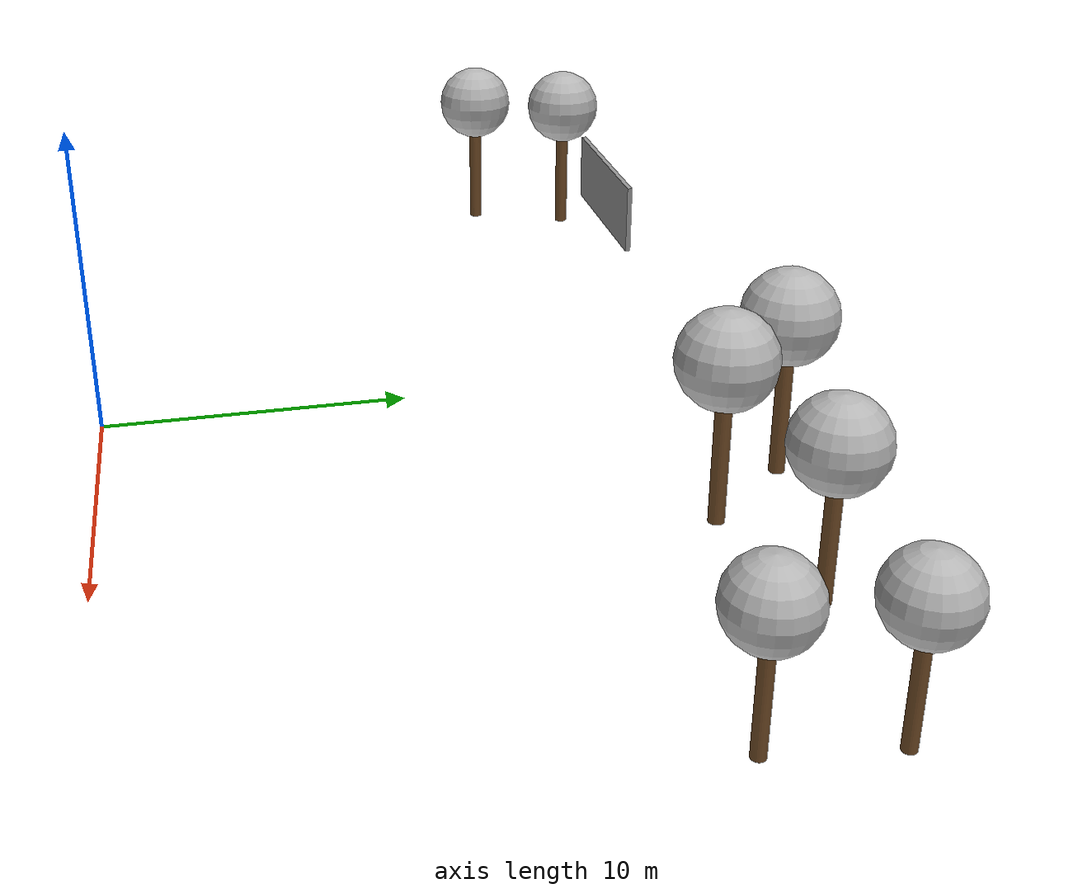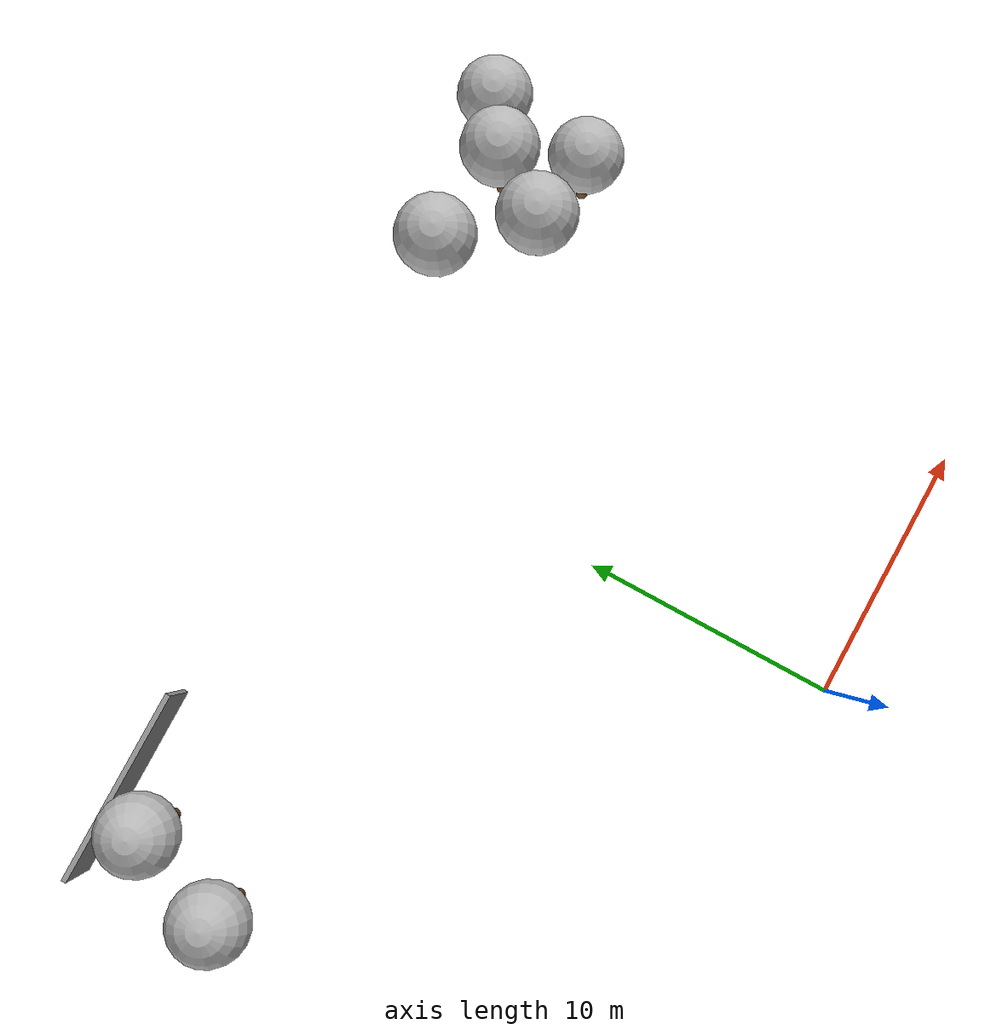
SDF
<sdf version="1.7">
 <world name="default">
  <model name="tree_simple_0_clone_0_clone_clone_1_clone_clone_1">
   <static>1</static>
   <link name="link">
    <pose>0 0 0.1 0 -0 0</pose>
    <inertial>
     <mass>666</mass>
     <inertia>
      <ixx>0.0861167</ixx>
      <ixy>0</ixy>
      <ixz>0</ixz>
      <iyy>0.0861167</iyy>
      <iyz>0</iyz>
      <izz>0.0861167</izz>
     </inertia>
    </inertial>
    <collision name="collision_trunk">
     <pose>0 0 2 0 -0 0</pose>
     <geometry><cylinder><radius>0.25</radius><length>4</length></cylinder></geometry>
     <surface>
      <contact>
       <poissons_ratio>0.347</poissons_ratio>
       <elastic_modulus>8.8e+09</elastic_modulus>
       <ode><kp>100000</kp><kd>100</kd><max_vel>100</max_vel><min_depth>0.001</min_depth></ode>
      </contact>
      <friction>
       <torsional>
        <coefficient>1</coefficient>
        <use_patch_radius>0</use_patch_radius>
        <surface_radius>0.01</surface_radius>
       </torsional>
      </friction>
     </surface>
    </collision>
    <collision name="collision_treetop">
     <pose>0 0 5.2 0 -0 0</pose>
     <geometry><sphere><radius>1.5</radius></sphere></geometry>
     <surface>
      <contact>
       <poissons_ratio>0.347</poissons_ratio>
       <elastic_modulus>8.8e+09</elastic_modulus>
       <ode><kp>100000</kp><kd>100</kd><max_vel>100</max_vel><min_depth>0.001</min_depth></ode>
      </contact>
      <friction>
       <torsional>
        <coefficient>1</coefficient>
        <use_patch_radius>0</use_patch_radius>
        <surface_radius>0.01</surface_radius>
       </torsional>
      </friction>
     </surface>
    </collision>
    <visual name="trunk">
     <pose>0 0 2 0 -0 0</pose>
     <geometry><cylinder><radius>0.25</radius><length>4</length></cylinder></geometry>
     <material>
      <script>
       <uri>model://tree_simple/scripts</uri>
       <uri>model://tree_simple/materials/textures</uri>
       <name>TreeSimple/Trunk</name>
      </script>
     </material>
    </visual>
    <visual name="treetop">
     <pose>0 0 5.2 0 -0 0</pose>
     <geometry><sphere><radius>1.5</radius></sphere></geometry>
     <material>
      <script>
       <uri>model://tree_simple/scripts</uri>
       <uri>model://tree_simple/materials/textures</uri>
       <name>TreeSimple/Treetop</name>
      </script>
     </material>
    </visual>
   </link>
   <pose>14.4798 22.0908 -5.25636 0 -0 0</pose>
  </model>
  <model name="tree_simple_0_clone_0_clone_clone_1_clone_clone_2">
   <static>1</static>
   <link name="link">
    <pose>0 0 0.1 0 -0 0</pose>
    <inertial>
     <mass>666</mass>
     <inertia>
      <ixx>0.0861167</ixx>
      <ixy>0</ixy>
      <ixz>0</ixz>
      <iyy>0.0861167</iyy>
      <iyz>0</iyz>
      <izz>0.0861167</izz>
     </inertia>
    </inertial>
    <collision name="collision_trunk">
     <pose>0 0 2 0 -0 0</pose>
     <geometry><cylinder><radius>0.25</radius><length>4</length></cylinder></geometry>
     <surface>
      <contact>
       <poissons_ratio>0.347</poissons_ratio>
       <elastic_modulus>8.8e+09</elastic_modulus>
       <ode><kp>100000</kp><kd>100</kd><max_vel>100</max_vel><min_depth>0.001</min_depth></ode>
      </contact>
      <friction>
       <torsional>
        <coefficient>1</coefficient>
        <use_patch_radius>0</use_patch_radius>
        <surface_radius>0.01</surface_radius>
       </torsional>
      </friction>
     </surface>
    </collision>
    <collision name="collision_treetop">
     <pose>0 0 5.2 0 -0 0</pose>
     <geometry><sphere><radius>1.5</radius></sphere></geometry>
     <surface>
      <contact>
       <poissons_ratio>0.347</poissons_ratio>
       <elastic_modulus>8.8e+09</elastic_modulus>
       <ode><kp>100000</kp><kd>100</kd><max_vel>100</max_vel><min_depth>0.001</min_depth></ode>
      </contact>
      <friction>
       <torsional>
        <coefficient>1</coefficient>
        <use_patch_radius>0</use_patch_radius>
        <surface_radius>0.01</surface_radius>
       </torsional>
      </friction>
     </surface>
    </collision>
    <visual name="trunk">
     <pose>0 0 2 0 -0 0</pose>
     <geometry><cylinder><radius>0.25</radius><length>4</length></cylinder></geometry>
     <material>
      <script>
       <uri>model://tree_simple/scripts</uri>
       <uri>model://tree_simple/materials/textures</uri>
       <name>TreeSimple/Trunk</name>
      </script>
     </material>
    </visual>
    <visual name="treetop">
     <pose>0 0 5.2 0 -0 0</pose>
     <geometry><sphere><radius>1.5</radius></sphere></geometry>
     <material>
      <script>
       <uri>model://tree_simple/scripts</uri>
       <uri>model://tree_simple/materials/textures</uri>
       <name>TreeSimple/Treetop</name>
      </script>
     </material>
    </visual>
   </link>
   <pose>13.9771 17.7579 -5.17122 0 -0 0</pose>
  </model>
  <model name="grey_wall_0">
   <static>1</static>
   <link name="link">
    <pose>0 0 1.4 0 -0 0</pose>
    <collision name="collision"><geometry><box><size>7.5 0.2 2.8</size></box></geometry></collision>
    <visual name="visual">
     <cast_shadows>0</cast_shadows>
     <geometry><box><size>7.5 0.2 2.8</size></box></geometry>
     <material>
      <script>
       <uri>model://grey_wall/materials/scripts</uri>
       <uri>model://grey_wall/materials/textures</uri>
       <name>vrc/grey_wall</name>
      </script>
     </material>
    </visual>
   </link>
   <pose>-15.2381 21.2721 0.02316 0 -0 0</pose>
  </model>
  <model name="tree_simple_0_clone_0_clone_clone_5_clone">
   <static>1</static>
   <link name="link">
    <pose>0 0 0.1 0 -0 0</pose>
    <inertial>
     <mass>666</mass>
     <inertia>
      <ixx>0.0861167</ixx>
      <ixy>0</ixy>
      <ixz>0</ixz>
      <iyy>0.0861167</iyy>
      <iyz>0</iyz>
      <izz>0.0861167</izz>
     </inertia>
    </inertial>
    <collision name="collision_trunk">
     <pose>0 0 2 0 -0 0</pose>
     <geometry><cylinder><radius>0.25</radius><length>4</length></cylinder></geometry>
     <surface>
      <contact>
       <poissons_ratio>0.347</poissons_ratio>
       <elastic_modulus>8.8e+09</elastic_modulus>
       <ode><kp>100000</kp><kd>100</kd><max_vel>100</max_vel><min_depth>0.001</min_depth></ode>
      </contact>
      <friction>
       <torsional>
        <coefficient>1</coefficient>
        <use_patch_radius>0</use_patch_radius>
        <surface_radius>0.01</surface_radius>
       </torsional>
      </friction>
     </surface>
    </collision>
    <collision name="collision_treetop">
     <pose>0 0 5.2 0 -0 0</pose>
     <geometry><sphere><radius>1.5</radius></sphere></geometry>
     <surface>
      <contact>
       <poissons_ratio>0.347</poissons_ratio>
       <elastic_modulus>8.8e+09</elastic_modulus>
       <ode><kp>100000</kp><kd>100</kd><max_vel>100</max_vel><min_depth>0.001</min_depth></ode>
      </contact>
      <friction>
       <torsional>
        <coefficient>1</coefficient>
        <use_patch_radius>0</use_patch_radius>
        <surface_radius>0.01</surface_radius>
       </torsional>
      </friction>
     </surface>
    </collision>
    <visual name="trunk">
     <pose>0 0 2 0 -0 0</pose>
     <geometry><cylinder><radius>0.25</radius><length>4</length></cylinder></geometry>
     <material>
      <script>
       <uri>model://tree_simple/scripts</uri>
       <uri>model://tree_simple/materials/textures</uri>
       <name>TreeSimple/Trunk</name>
      </script>
     </material>
    </visual>
    <visual name="treetop">
     <pose>0 0 5.2 0 -0 0</pose>
     <geometry><sphere><radius>1.5</radius></sphere></geometry>
     <material>
      <script>
       <uri>model://tree_simple/scripts</uri>
       <uri>model://tree_simple/materials/textures</uri>
       <name>TreeSimple/Treetop</name>
      </script>
     </material>
    </visual>
   </link>
   <pose>7.38896 20.4847 0 0 -0 0</pose>
  </model>
  <model name="tree_simple_0_clone_0_clone_clone_5_clone_0">
   <static>1</static>
   <link name="link">
    <pose>0 0 0.1 0 -0 0</pose>
    <inertial>
     <mass>666</mass>
     <inertia>
      <ixx>0.0861167</ixx>
      <ixy>0</ixy>
      <ixz>0</ixz>
      <iyy>0.0861167</iyy>
      <iyz>0</iyz>
      <izz>0.0861167</izz>
     </inertia>
    </inertial>
    <collision name="collision_trunk">
     <pose>0 0 2 0 -0 0</pose>
     <geometry><cylinder><radius>0.25</radius><length>4</length></cylinder></geometry>
     <surface>
      <contact>
       <poissons_ratio>0.347</poissons_ratio>
       <elastic_modulus>8.8e+09</elastic_modulus>
       <ode><kp>100000</kp><kd>100</kd><max_vel>100</max_vel><min_depth>0.001</min_depth></ode>
      </contact>
      <friction>
       <torsional>
        <coefficient>1</coefficient>
        <use_patch_radius>0</use_patch_radius>
        <surface_radius>0.01</surface_radius>
       </torsional>
      </friction>
     </surface>
    </collision>
    <collision name="collision_treetop">
     <pose>0 0 5.2 0 -0 0</pose>
     <geometry><sphere><radius>1.5</radius></sphere></geometry>
     <surface>
      <contact>
       <poissons_ratio>0.347</poissons_ratio>
       <elastic_modulus>8.8e+09</elastic_modulus>
       <ode><kp>100000</kp><kd>100</kd><max_vel>100</max_vel><min_depth>0.001</min_depth></ode>
      </contact>
      <friction>
       <torsional>
        <coefficient>1</coefficient>
        <use_patch_radius>0</use_patch_radius>
        <surface_radius>0.01</surface_radius>
       </torsional>
      </friction>
     </surface>
    </collision>
    <visual name="trunk">
     <pose>0 0 2 0 -0 0</pose>
     <geometry><cylinder><radius>0.25</radius><length>4</length></cylinder></geometry>
     <material>
      <script>
       <uri>model://tree_simple/scripts</uri>
       <uri>model://tree_simple/materials/textures</uri>
       <name>TreeSimple/Trunk</name>
      </script>
     </material>
    </visual>
    <visual name="treetop">
     <pose>0 0 5.2 0 -0 0</pose>
     <geometry><sphere><radius>1.5</radius></sphere></geometry>
     <material>
      <script>
       <uri>model://tree_simple/scripts</uri>
       <uri>model://tree_simple/materials/textures</uri>
       <name>TreeSimple/Treetop</name>
      </script>
     </material>
    </visual>
   </link>
   <pose>9.77795 17.6794 0 0 -0 0</pose>
  </model>
  <model name="tree_simple_0_clone_0_clone_clone_5_clone_1">
   <static>1</static>
   <link name="link">
    <pose>0 0 0.1 0 -0 0</pose>
    <inertial>
     <mass>666</mass>
     <inertia>
      <ixx>0.0861167</ixx>
      <ixy>0</ixy>
      <ixz>0</ixz>
      <iyy>0.0861167</iyy>
      <iyz>0</iyz>
      <izz>0.0861167</izz>
     </inertia>
    </inertial>
    <collision name="collision_trunk">
     <pose>0 0 2 0 -0 0</pose>
     <geometry><cylinder><radius>0.25</radius><length>4</length></cylinder></geometry>
     <surface>
      <contact>
       <poissons_ratio>0.347</poissons_ratio>
       <elastic_modulus>8.8e+09</elastic_modulus>
       <ode><kp>100000</kp><kd>100</kd><max_vel>100</max_vel><min_depth>0.001</min_depth></ode>
      </contact>
      <friction>
       <torsional>
        <coefficient>1</coefficient>
        <use_patch_radius>0</use_patch_radius>
        <surface_radius>0.01</surface_radius>
       </torsional>
      </friction>
     </surface>
    </collision>
    <collision name="collision_treetop">
     <pose>0 0 5.2 0 -0 0</pose>
     <geometry><sphere><radius>1.5</radius></sphere></geometry>
     <surface>
      <contact>
       <poissons_ratio>0.347</poissons_ratio>
       <elastic_modulus>8.8e+09</elastic_modulus>
       <ode><kp>100000</kp><kd>100</kd><max_vel>100</max_vel><min_depth>0.001</min_depth></ode>
      </contact>
      <friction>
       <torsional>
        <coefficient>1</coefficient>
        <use_patch_radius>0</use_patch_radius>
        <surface_radius>0.01</surface_radius>
       </torsional>
      </friction>
     </surface>
    </collision>
    <visual name="trunk">
     <pose>0 0 2 0 -0 0</pose>
     <geometry><cylinder><radius>0.25</radius><length>4</length></cylinder></geometry>
     <material>
      <script>
       <uri>model://tree_simple/scripts</uri>
       <uri>model://tree_simple/materials/textures</uri>
       <name>TreeSimple/Trunk</name>
      </script>
     </material>
    </visual>
    <visual name="treetop">
     <pose>0 0 5.2 0 -0 0</pose>
     <geometry><sphere><radius>1.5</radius></sphere></geometry>
     <material>
      <script>
       <uri>model://tree_simple/scripts</uri>
       <uri>model://tree_simple/materials/textures</uri>
       <name>TreeSimple/Treetop</name>
      </script>
     </material>
    </visual>
   </link>
   <pose>11.7759 20.3219 -1.86721 0 -0 0</pose>
  </model>
  <model name="tree_simple_0_clone_0_clone_clone_clone_0_clone_2_clone_0_clone_0">
   <static>1</static>
   <link name="link">
    <pose>0 0 0.1 0 -0 0</pose>
    <inertial>
     <mass>666</mass>
     <inertia>
      <ixx>0.0861167</ixx>
      <ixy>0</ixy>
      <ixz>0</ixz>
      <iyy>0.0861167</iyy>
      <iyz>0</iyz>
      <izz>0.0861167</izz>
     </inertia>
    </inertial>
    <collision name="collision_trunk">
     <pose>0 0 2 0 -0 0</pose>
     <geometry><cylinder><radius>0.25</radius><length>4</length></cylinder></geometry>
     <surface>
      <contact>
       <poissons_ratio>0.347</poissons_ratio>
       <elastic_modulus>8.8e+09</elastic_modulus>
       <ode><kp>100000</kp><kd>100</kd><max_vel>100</max_vel><min_depth>0.001</min_depth></ode>
      </contact>
      <friction>
       <torsional>
        <coefficient>1</coefficient>
        <use_patch_radius>0</use_patch_radius>
        <surface_radius>0.01</surface_radius>
       </torsional>
      </friction>
     </surface>
    </collision>
    <collision name="collision_treetop">
     <pose>0 0 5.2 0 -0 0</pose>
     <geometry><sphere><radius>1.5</radius></sphere></geometry>
     <surface>
      <contact>
       <poissons_ratio>0.347</poissons_ratio>
       <elastic_modulus>8.8e+09</elastic_modulus>
       <ode><kp>100000</kp><kd>100</kd><max_vel>100</max_vel><min_depth>0.001</min_depth></ode>
      </contact>
      <friction>
       <torsional>
        <coefficient>1</coefficient>
        <use_patch_radius>0</use_patch_radius>
        <surface_radius>0.01</surface_radius>
       </torsional>
      </friction>
     </surface>
    </collision>
    <visual name="trunk">
     <pose>0 0 2 0 -0 0</pose>
     <geometry><cylinder><radius>0.25</radius><length>4</length></cylinder></geometry>
     <material>
      <script>
       <uri>model://tree_simple/scripts</uri>
       <uri>model://tree_simple/materials/textures</uri>
       <name>TreeSimple/Trunk</name>
      </script>
     </material>
    </visual>
    <visual name="treetop">
     <pose>0 0 5.2 0 -0 0</pose>
     <geometry><sphere><radius>1.5</radius></sphere></geometry>
     <material>
      <script>
       <uri>model://tree_simple/scripts</uri>
       <uri>model://tree_simple/materials/textures</uri>
       <name>TreeSimple/Treetop</name>
      </script>
     </material>
    </visual>
   </link>
   <pose>-15.6847 19.3765 0 0 -0 0</pose>
  </model>
  <model name="tree_simple_0_clone_0_clone_clone_clone_0_clone_2_clone_0_clone_1">
   <static>1</static>
   <link name="link">
    <pose>0 0 0.1 0 -0 0</pose>
    <inertial>
     <mass>666</mass>
     <inertia>
      <ixx>0.0861167</ixx>
      <ixy>0</ixy>
      <ixz>0</ixz>
      <iyy>0.0861167</iyy>
      <iyz>0</iyz>
      <izz>0.0861167</izz>
     </inertia>
    </inertial>
    <collision name="collision_trunk">
     <pose>0 0 2 0 -0 0</pose>
     <geometry><cylinder><radius>0.25</radius><length>4</length></cylinder></geometry>
     <surface>
      <contact>
       <poissons_ratio>0.347</poissons_ratio>
       <elastic_modulus>8.8e+09</elastic_modulus>
       <ode><kp>100000</kp><kd>100</kd><max_vel>100</max_vel><min_depth>0.001</min_depth></ode>
      </contact>
      <friction>
       <torsional>
        <coefficient>1</coefficient>
        <use_patch_radius>0</use_patch_radius>
        <surface_radius>0.01</surface_radius>
       </torsional>
      </friction>
     </surface>
    </collision>
    <collision name="collision_treetop">
     <pose>0 0 5.2 0 -0 0</pose>
     <geometry><sphere><radius>1.5</radius></sphere></geometry>
     <surface>
      <contact>
       <poissons_ratio>0.347</poissons_ratio>
       <elastic_modulus>8.8e+09</elastic_modulus>
       <ode><kp>100000</kp><kd>100</kd><max_vel>100</max_vel><min_depth>0.001</min_depth></ode>
      </contact>
      <friction>
       <torsional>
        <coefficient>1</coefficient>
        <use_patch_radius>0</use_patch_radius>
        <surface_radius>0.01</surface_radius>
       </torsional>
      </friction>
     </surface>
    </collision>
    <visual name="trunk">
     <pose>0 0 2 0 -0 0</pose>
     <geometry><cylinder><radius>0.25</radius><length>4</length></cylinder></geometry>
     <material>
      <script>
       <uri>model://tree_simple/scripts</uri>
       <uri>model://tree_simple/materials/textures</uri>
       <name>TreeSimple/Trunk</name>
      </script>
     </material>
    </visual>
    <visual name="treetop">
     <pose>0 0 5.2 0 -0 0</pose>
     <geometry><sphere><radius>1.5</radius></sphere></geometry>
     <material>
      <script>
       <uri>model://tree_simple/scripts</uri>
       <uri>model://tree_simple/materials/textures</uri>
       <name>TreeSimple/Treetop</name>
      </script>
     </material>
    </visual>
   </link>
   <pose>-17.1032 15.7873 0 0 -0 0</pose>
  </model>
 </world>
</sdf>
